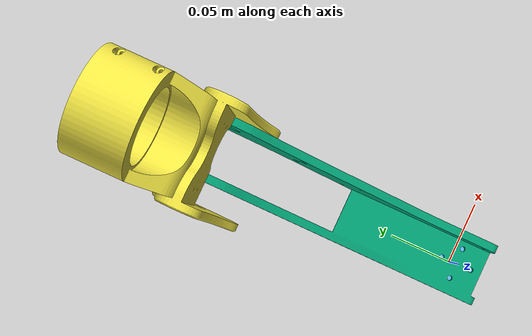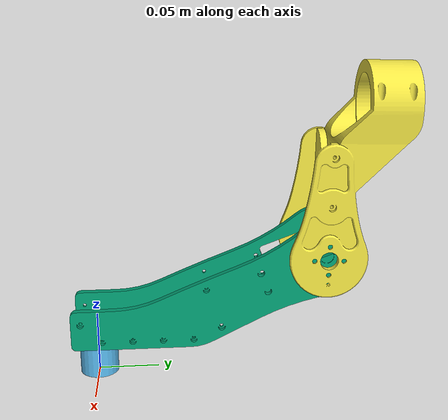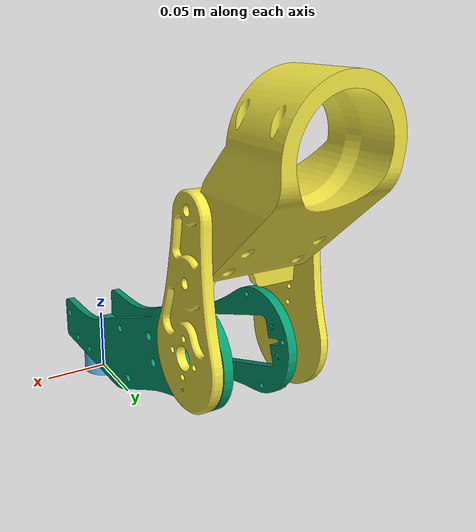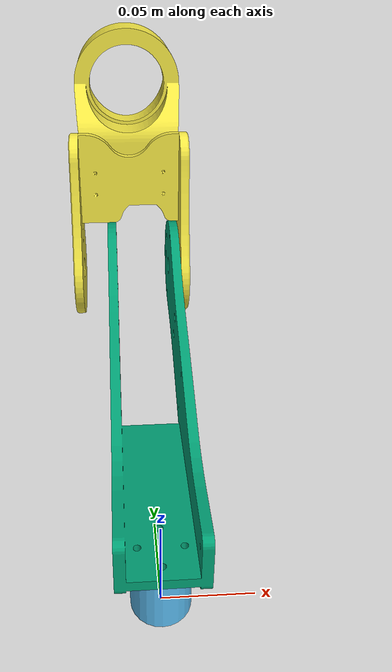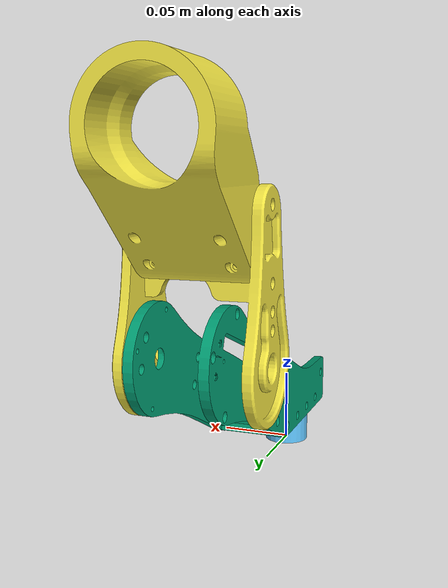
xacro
<?xml version="1.0"?>
<robot name="nebulizador_arm">

    <link name="world"/>

    <joint name="link1_joint" type="revolute">
        <axis xyz="0 0 1"/>
        <limit lower="-1.5708" upper="1.5708" effort="10" velocity="10"/>
        <origin xyz="0 0 0.016" rpy="0 0 0"/>
        <parent link="world"/>
        <child link="dummy_link"/>
    </joint>

    <link name="dummy_link">
        <visual>
            <origin xyz="0 0 0" rpy="0 0 0"/>
            <geometry>
                <cylinder radius="0.016" length="0.034"/>
            </geometry>
        </visual>
        <inertial>
            <mass value="3"/>
            <origin xyz="0 0 0" rpy="0 0 0"/>
            <inertia ixx="0.00008047434" ixy="0" ixz="0" iyy="0.00008047434" iyz="0" izz="0.00006424563"/>
        </inertial>
        <collision>
            <origin xyz="0 0 0" rpy="0 0 3.1416"/>
            <geometry>
                <cylinder radius="0.016" length="0.034"/>
            </geometry>
        </collision>
    </link>

    <joint name="dummy_joint" type="fixed">
        <parent link="dummy_link"/>
        <child link="link1"/>
        <origin xyz="0 0 0.016" rpy="0 0 0"/>
    </joint>

    <link name="link1">
        <inertial>
            <origin xyz="0 0 0" rpy="0 0 0"/>
            <mass value="0.385"/>
            <inertia ixx="0.001934" ixy="-0.00004188" ixz="0.00001696" iyy="0.0004250" iyz="0.0005391" izz="0.001805"/>
        </inertial>
        <collision>
            <origin xyz="0 0 0" rpy="0 0 3.1416"/>
            <geometry>
                <mesh filename="package://nebulizador_arm/meshes/Eslabon1.stl"/>
            </geometry>
        </collision>
        <visual>
            <origin rpy="0 0 3.1416" xyz="0 0 0"/>
            <geometry>
                <mesh filename="package://nebulizador_arm/meshes/Eslabon1.stl"/>
            </geometry>
        </visual>
    </link>

    <link name="link2">
        <inertial>
            <mass value="0.348"/>
            <origin xyz="0 0 0" rpy="0 0 0"/>
            <inertia ixx="0.0008054" ixy="0.000005522" ixz="-0.00002630" iyy="0.0008908" iyz="0.0002229" izz="0.0004215"/>
        </inertial>
        <collision>
            <origin xyz="0 0.004 0.035" rpy="0 0 3.1416"/>
            <geometry>
                <mesh filename="package://nebulizador_arm/meshes/Eslabon2.stl"/>
            </geometry>
        </collision>
        <visual>
            <origin xyz="0 0.004 0.035" rpy="0 0 3.1416"/>
            <geometry>
                <mesh filename="package://nebulizador_arm/meshes/Eslabon2.stl"/>
            </geometry>
        </visual>
    </link>

    <joint name="link2_joint" type="revolute">
        <axis xyz="1 0 0"/>
        <limit lower="0.785398" upper="-0.785398" effort="10" velocity="10"/>
        <origin xyz="-0.00838 0.190 0.06964" rpy="0 0 0"/>
        <parent link="link1"/>
        <child link="link2"/>
        <dynamics damping="0.7" friction="0.7"/>
    </joint>

<!-- The connection of the controllers with the hardware interface (that encapsulate the hardware) is done through the ros_control interfaces.
-->
    <gazebo reference="link1">
        <mu1>0.2</mu1>
        <mu2>0.2</mu2>
    </gazebo>

    <gazebo reference="link2">
        <mu1>0.2</mu1>
        <mu2>0.2</mu2>
    </gazebo>

</robot>
